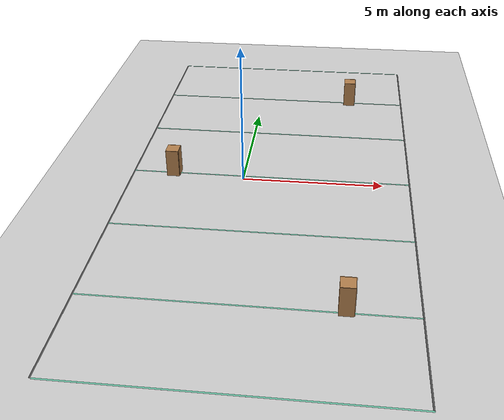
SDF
<sdf version="1.7">
 <world name="default">
  <model name="ground_plane">
   <static>1</static>
   <link name="link">
    <collision name="collision">
     <geometry><plane><normal>0 0 1</normal><size>100 100</size></plane></geometry>
     <surface>
      <contact><collide_bitmask>65535</collide_bitmask></contact>
      <friction><ode><mu>100</mu><mu2>50</mu2></ode></friction>
     </surface>
    </collision>
    <visual name="visual">
     <cast_shadows>0</cast_shadows>
     <geometry><plane><normal>0 0 1</normal><size>100 100</size></plane></geometry>
     <material>
      <script><uri>file://media/materials/scripts/gazebo.material</uri><name>Gazebo/Grey</name></script>
     </material>
    </visual>
   </link>
  </model>
  <gravity>0 0 -9.8</gravity>
  <magnetic_field>6e-06 2.3e-05 -4.2e-05</magnetic_field>
  <atmosphere type="adiabatic"/>
  <physics type="ode">
   <max_step_size>0.001</max_step_size>
   <real_time_factor>1</real_time_factor>
   <real_time_update_rate>1000</real_time_update_rate>
  </physics>
  <scene><ambient>0.4 0.4 0.4 1</ambient><background>0.7 0.7 0.7 1</background><shadows>1</shadows></scene>
  <spherical_coordinates>
   <surface_model>EARTH_WGS84</surface_model>
   <latitude_deg>0</latitude_deg>
   <longitude_deg>0</longitude_deg>
   <elevation>0</elevation>
   <heading_deg>0</heading_deg>
  </spherical_coordinates>
  <model name="cabinet">
   <static>1</static>
   <link name="cabinet_bottom_plate">
    <inertial>
     <pose>0 0 -1 0 -0 0</pose>
     <inertia><ixx>2.05</ixx><ixy>0</ixy><ixz>0</ixz><iyy>2.05</iyy><iyz>0</iyz><izz>2.05</izz></inertia>
     <mass>25</mass>
    </inertial>
    <collision name="cabinet_bottom_plate_geom">
     <pose>0 0 0.01 0 -0 0</pose>
     <geometry><box><size>0.45 0.45 0.02</size></box></geometry>
    </collision>
    <visual name="cabinet_bottom_plate_geom_visual">
     <pose>0 0 0.01 0 -0 0</pose>
     <geometry><box><size>0.45 0.45 0.02</size></box></geometry>
     <material>
      <script><uri>file://media/materials/scripts/gazebo.material</uri><name>Gazebo/Wood</name></script>
     </material>
    </visual>
    <collision name="cabinet_bottom_plate_geom_cabinet_back_plate">
     <pose>0.235 0 0.51 0 -0 0</pose>
     <geometry><box><size>0.02 0.45 1.02</size></box></geometry>
    </collision>
    <visual name="cabinet_bottom_plate_geom_cabinet_back_plate_visual">
     <pose>0.235 0 0.51 0 -0 0</pose>
     <geometry><box><size>0.02 0.45 1.02</size></box></geometry>
     <material>
      <script><uri>file://media/materials/scripts/gazebo.material</uri><name>Gazebo/Wood</name></script>
     </material>
    </visual>
    <collision name="cabinet_bottom_plate_geom_cabinet_left_plate">
     <pose>0 0.235 0.51 0 -0 0</pose>
     <geometry><box><size>0.45 0.02 1.02</size></box></geometry>
    </collision>
    <visual name="cabinet_bottom_plate_geom_cabinet_left_plate_visual">
     <pose>0 0.235 0.51 0 -0 0</pose>
     <geometry><box><size>0.45 0.02 1.02</size></box></geometry>
     <material>
      <script><uri>file://media/materials/scripts/gazebo.material</uri><name>Gazebo/Wood</name></script>
     </material>
    </visual>
    <collision name="cabinet_bottom_plate_geom_cabinet_middle_plate">
     <pose>0 0 0.51 0 -0 0</pose>
     <geometry><box><size>0.45 0.45 0.02</size></box></geometry>
    </collision>
    <visual name="cabinet_bottom_plate_geom_cabinet_middle_plate_visual">
     <pose>0 0 0.51 0 -0 0</pose>
     <geometry><box><size>0.45 0.45 0.02</size></box></geometry>
     <material>
      <script><uri>file://media/materials/scripts/gazebo.material</uri><name>Gazebo/Wood</name></script>
     </material>
    </visual>
    <collision name="cabinet_bottom_plate_geom_cabinet_right_plate">
     <pose>0 -0.235 0.51 0 -0 0</pose>
     <geometry><box><size>0.45 0.02 1.02</size></box></geometry>
    </collision>
    <visual name="cabinet_bottom_plate_geom_cabinet_right_plate_visual">
     <pose>0 -0.235 0.51 0 -0 0</pose>
     <geometry><box><size>0.45 0.02 1.02</size></box></geometry>
     <material>
      <script><uri>file://media/materials/scripts/gazebo.material</uri><name>Gazebo/Wood</name></script>
     </material>
    </visual>
    <collision name="cabinet_bottom_plate_geom_cabinet_top_plate">
     <pose>0 0 1.01 0 -0 0</pose>
     <geometry><box><size>0.45 0.45 0.02</size></box></geometry>
    </collision>
    <visual name="cabinet_bottom_plate_geom_cabinet_top_plate_visual">
     <pose>0 0 1.01 0 -0 0</pose>
     <geometry><box><size>0.45 0.45 0.02</size></box></geometry>
     <material>
      <script><uri>file://media/materials/scripts/gazebo.material</uri><name>Gazebo/Wood</name></script>
     </material>
    </visual>
   </link>
   <pose>3.71429 6.71559 0 0 -0 0</pose>
  </model>
  <model name="cabinet_clone">
   <static>1</static>
   <link name="cabinet_bottom_plate">
    <inertial>
     <pose>0 0 -1 0 -0 0</pose>
     <inertia><ixx>2.05</ixx><ixy>0</ixy><ixz>0</ixz><iyy>2.05</iyy><iyz>0</iyz><izz>2.05</izz></inertia>
     <mass>25</mass>
    </inertial>
    <collision name="cabinet_bottom_plate_geom">
     <pose>0 0 0.01 0 -0 0</pose>
     <geometry><box><size>0.45 0.45 0.02</size></box></geometry>
    </collision>
    <visual name="cabinet_bottom_plate_geom_visual">
     <pose>0 0 0.01 0 -0 0</pose>
     <geometry><box><size>0.45 0.45 0.02</size></box></geometry>
     <material>
      <script><uri>file://media/materials/scripts/gazebo.material</uri><name>Gazebo/Wood</name></script>
     </material>
    </visual>
    <collision name="cabinet_bottom_plate_geom_cabinet_back_plate">
     <pose>0.235 0 0.51 0 -0 0</pose>
     <geometry><box><size>0.02 0.45 1.02</size></box></geometry>
    </collision>
    <visual name="cabinet_bottom_plate_geom_cabinet_back_plate_visual">
     <pose>0.235 0 0.51 0 -0 0</pose>
     <geometry><box><size>0.02 0.45 1.02</size></box></geometry>
     <material>
      <script><uri>file://media/materials/scripts/gazebo.material</uri><name>Gazebo/Wood</name></script>
     </material>
    </visual>
    <collision name="cabinet_bottom_plate_geom_cabinet_left_plate">
     <pose>0 0.235 0.51 0 -0 0</pose>
     <geometry><box><size>0.45 0.02 1.02</size></box></geometry>
    </collision>
    <visual name="cabinet_bottom_plate_geom_cabinet_left_plate_visual">
     <pose>0 0.235 0.51 0 -0 0</pose>
     <geometry><box><size>0.45 0.02 1.02</size></box></geometry>
     <material>
      <script><uri>file://media/materials/scripts/gazebo.material</uri><name>Gazebo/Wood</name></script>
     </material>
    </visual>
    <collision name="cabinet_bottom_plate_geom_cabinet_middle_plate">
     <pose>0 0 0.51 0 -0 0</pose>
     <geometry><box><size>0.45 0.45 0.02</size></box></geometry>
    </collision>
    <visual name="cabinet_bottom_plate_geom_cabinet_middle_plate_visual">
     <pose>0 0 0.51 0 -0 0</pose>
     <geometry><box><size>0.45 0.45 0.02</size></box></geometry>
     <material>
      <script><uri>file://media/materials/scripts/gazebo.material</uri><name>Gazebo/Wood</name></script>
     </material>
    </visual>
    <collision name="cabinet_bottom_plate_geom_cabinet_right_plate">
     <pose>0 -0.235 0.51 0 -0 0</pose>
     <geometry><box><size>0.45 0.02 1.02</size></box></geometry>
    </collision>
    <visual name="cabinet_bottom_plate_geom_cabinet_right_plate_visual">
     <pose>0 -0.235 0.51 0 -0 0</pose>
     <geometry><box><size>0.45 0.02 1.02</size></box></geometry>
     <material>
      <script><uri>file://media/materials/scripts/gazebo.material</uri><name>Gazebo/Wood</name></script>
     </material>
    </visual>
    <collision name="cabinet_bottom_plate_geom_cabinet_top_plate">
     <pose>0 0 1.01 0 -0 0</pose>
     <geometry><box><size>0.45 0.45 0.02</size></box></geometry>
    </collision>
    <visual name="cabinet_bottom_plate_geom_cabinet_top_plate_visual">
     <pose>0 0 1.01 0 -0 0</pose>
     <geometry><box><size>0.45 0.45 0.02</size></box></geometry>
     <material>
      <script><uri>file://media/materials/scripts/gazebo.material</uri><name>Gazebo/Wood</name></script>
     </material>
    </visual>
   </link>
   <pose>-2.56995 0.176892 0 0 -0 0</pose>
  </model>
  <model name="cabinet_clone_0">
   <static>1</static>
   <link name="cabinet_bottom_plate">
    <inertial>
     <pose>0 0 -1 0 -0 0</pose>
     <inertia><ixx>2.05</ixx><ixy>0</ixy><ixz>0</ixz><iyy>2.05</iyy><iyz>0</iyz><izz>2.05</izz></inertia>
     <mass>25</mass>
    </inertial>
    <collision name="cabinet_bottom_plate_geom">
     <pose>0 0 0.01 0 -0 0</pose>
     <geometry><box><size>0.45 0.45 0.02</size></box></geometry>
    </collision>
    <visual name="cabinet_bottom_plate_geom_visual">
     <pose>0 0 0.01 0 -0 0</pose>
     <geometry><box><size>0.45 0.45 0.02</size></box></geometry>
     <material>
      <script><uri>file://media/materials/scripts/gazebo.material</uri><name>Gazebo/Wood</name></script>
     </material>
    </visual>
    <collision name="cabinet_bottom_plate_geom_cabinet_back_plate">
     <pose>0.235 0 0.51 0 -0 0</pose>
     <geometry><box><size>0.02 0.45 1.02</size></box></geometry>
    </collision>
    <visual name="cabinet_bottom_plate_geom_cabinet_back_plate_visual">
     <pose>0.235 0 0.51 0 -0 0</pose>
     <geometry><box><size>0.02 0.45 1.02</size></box></geometry>
     <material>
      <script><uri>file://media/materials/scripts/gazebo.material</uri><name>Gazebo/Wood</name></script>
     </material>
    </visual>
    <collision name="cabinet_bottom_plate_geom_cabinet_left_plate">
     <pose>0 0.235 0.51 0 -0 0</pose>
     <geometry><box><size>0.45 0.02 1.02</size></box></geometry>
    </collision>
    <visual name="cabinet_bottom_plate_geom_cabinet_left_plate_visual">
     <pose>0 0.235 0.51 0 -0 0</pose>
     <geometry><box><size>0.45 0.02 1.02</size></box></geometry>
     <material>
      <script><uri>file://media/materials/scripts/gazebo.material</uri><name>Gazebo/Wood</name></script>
     </material>
    </visual>
    <collision name="cabinet_bottom_plate_geom_cabinet_middle_plate">
     <pose>0 0 0.51 0 -0 0</pose>
     <geometry><box><size>0.45 0.45 0.02</size></box></geometry>
    </collision>
    <visual name="cabinet_bottom_plate_geom_cabinet_middle_plate_visual">
     <pose>0 0 0.51 0 -0 0</pose>
     <geometry><box><size>0.45 0.45 0.02</size></box></geometry>
     <material>
      <script><uri>file://media/materials/scripts/gazebo.material</uri><name>Gazebo/Wood</name></script>
     </material>
    </visual>
    <collision name="cabinet_bottom_plate_geom_cabinet_right_plate">
     <pose>0 -0.235 0.51 0 -0 0</pose>
     <geometry><box><size>0.45 0.02 1.02</size></box></geometry>
    </collision>
    <visual name="cabinet_bottom_plate_geom_cabinet_right_plate_visual">
     <pose>0 -0.235 0.51 0 -0 0</pose>
     <geometry><box><size>0.45 0.02 1.02</size></box></geometry>
     <material>
      <script><uri>file://media/materials/scripts/gazebo.material</uri><name>Gazebo/Wood</name></script>
     </material>
    </visual>
    <collision name="cabinet_bottom_plate_geom_cabinet_top_plate">
     <pose>0 0 1.01 0 -0 0</pose>
     <geometry><box><size>0.45 0.45 0.02</size></box></geometry>
    </collision>
    <visual name="cabinet_bottom_plate_geom_cabinet_top_plate_visual">
     <pose>0 0 1.01 0 -0 0</pose>
     <geometry><box><size>0.45 0.45 0.02</size></box></geometry>
     <material>
      <script><uri>file://media/materials/scripts/gazebo.material</uri><name>Gazebo/Wood</name></script>
     </material>
    </visual>
   </link>
   <pose>3.81461 -6.67108 0 0 -0 0</pose>
  </model>
  <light name="sun" type="directional">
   <pose>-0.955999 -0.078041 10 0 -0 0</pose>
   <diffuse>0.8 0.8 0.8 1</diffuse>
   <specular>0.2 0.2 0.2 1</specular>
   <attenuation>
    <range>1000</range>
    <constant>0.9</constant>
    <linear>0.01</linear>
    <quadratic>0.001</quadratic>
   </attenuation>
   <direction>-0.5 0.1 -0.9</direction>
   <spot><inner_angle>0</inner_angle><outer_angle>0</outer_angle><falloff>0</falloff></spot>
  </light>
  <model name="line_1">
   <pose>1.12399 6.71527 0 0 -0 0</pose>
   <link name="Wall_0">
    <collision name="Wall_0_Collision">
     <geometry><box><size>10 0.05 5e-05</size></box></geometry>
     <pose>0 0 0.0025 0 -0 0</pose>
    </collision>
    <visual name="Wall_0_Visual">
     <pose>0 0 0.0025 0 -0 0</pose>
     <geometry><box><size>10 0.05 5e-05</size></box></geometry>
     <material>
      <script><uri>file://media/materials/scripts/gazebo.material</uri><name>Gazebo/Grey</name></script>
      <ambient>0.435294 0.796078 0.67451 1</ambient>
     </material>
     <meta><layer>0</layer></meta>
    </visual>
    <pose>-0.194987 -0 0 0 -0 3.14159</pose>
   </link>
   <static>1</static>
  </model>
  <model name="line_1_clone">
   <pose>1.14261 10.0348 0 0 -0 0</pose>
   <link name="Wall_0">
    <collision name="Wall_0_Collision">
     <geometry><box><size>10 0.05 5e-05</size></box></geometry>
     <pose>0 0 0.0025 0 -0 0</pose>
    </collision>
    <visual name="Wall_0_Visual">
     <pose>0 0 0.0025 0 -0 0</pose>
     <geometry><box><size>10 0.05 5e-05</size></box></geometry>
     <material>
      <script><uri>file://media/materials/scripts/gazebo.material</uri><name>Gazebo/Grey</name></script>
      <ambient>0.435294 0.796078 0.67451 1</ambient>
     </material>
     <meta><layer>0</layer></meta>
    </visual>
    <pose>-0.194987 -0 0 0 -0 3.14159</pose>
   </link>
   <static>1</static>
  </model>
  <model name="line_1_clone_0">
   <pose>1.17821 -10.0066 0 0 -0 0</pose>
   <link name="Wall_0">
    <collision name="Wall_0_Collision">
     <geometry><box><size>10 0.05 5e-05</size></box></geometry>
     <pose>0 0 0.0025 0 -0 0</pose>
    </collision>
    <visual name="Wall_0_Visual">
     <pose>0 0 0.0025 0 -0 0</pose>
     <geometry><box><size>10 0.05 5e-05</size></box></geometry>
     <material>
      <script><uri>file://media/materials/scripts/gazebo.material</uri><name>Gazebo/Grey</name></script>
      <ambient>0.435294 0.796078 0.67451 1</ambient>
     </material>
     <meta><layer>0</layer></meta>
    </visual>
    <pose>-0.194987 -0 0 0 -0 3.14159</pose>
   </link>
   <static>1</static>
  </model>
  <model name="line_1_clone_1">
   <pose>1.13579 3.53561 0 0 -0 0</pose>
   <link name="Wall_0">
    <collision name="Wall_0_Collision">
     <geometry><box><size>10 0.05 5e-05</size></box></geometry>
     <pose>0 0 0.0025 0 -0 0</pose>
    </collision>
    <visual name="Wall_0_Visual">
     <pose>0 0 0.0025 0 -0 0</pose>
     <geometry><box><size>10 0.05 5e-05</size></box></geometry>
     <material>
      <script><uri>file://media/materials/scripts/gazebo.material</uri><name>Gazebo/Grey</name></script>
      <ambient>0.435294 0.796078 0.67451 1</ambient>
     </material>
     <meta><layer>0</layer></meta>
    </visual>
    <pose>-0.194987 -0 0 0 -0 3.14159</pose>
   </link>
   <static>1</static>
  </model>
  <model name="line_1_clone_2">
   <pose>1.13711 0.172698 0 0 -0 0</pose>
   <link name="Wall_0">
    <collision name="Wall_0_Collision">
     <geometry><box><size>10 0.05 5e-05</size></box></geometry>
     <pose>0 0 0.0025 0 -0 0</pose>
    </collision>
    <visual name="Wall_0_Visual">
     <pose>0 0 0.0025 0 -0 0</pose>
     <geometry><box><size>10 0.05 5e-05</size></box></geometry>
     <material>
      <script><uri>file://media/materials/scripts/gazebo.material</uri><name>Gazebo/Grey</name></script>
      <ambient>0.435294 0.796078 0.67451 1</ambient>
     </material>
     <meta><layer>0</layer></meta>
    </visual>
    <pose>-0.194987 -0 0 0 -0 3.14159</pose>
   </link>
   <static>1</static>
  </model>
  <model name="line_1_clone_3">
   <pose>1.15461 -3.23711 0 0 -0 0</pose>
   <link name="Wall_0">
    <collision name="Wall_0_Collision">
     <geometry><box><size>10 0.05 5e-05</size></box></geometry>
     <pose>0 0 0.0025 0 -0 0</pose>
    </collision>
    <visual name="Wall_0_Visual">
     <pose>0 0 0.0025 0 -0 0</pose>
     <geometry><box><size>10 0.05 5e-05</size></box></geometry>
     <material>
      <script><uri>file://media/materials/scripts/gazebo.material</uri><name>Gazebo/Grey</name></script>
      <ambient>0.435294 0.796078 0.67451 1</ambient>
     </material>
     <meta><layer>0</layer></meta>
    </visual>
    <pose>-0.194987 -0 0 0 -0 3.14159</pose>
   </link>
   <static>1</static>
  </model>
  <model name="line_1_clone_4">
   <pose>1.15033 -6.77993 0 0 -0 0</pose>
   <link name="Wall_0">
    <collision name="Wall_0_Collision">
     <geometry><box><size>10 0.05 5e-05</size></box></geometry>
     <pose>0 0 0.0025 0 -0 0</pose>
    </collision>
    <visual name="Wall_0_Visual">
     <pose>0 0 0.0025 0 -0 0</pose>
     <geometry><box><size>10 0.05 5e-05</size></box></geometry>
     <material>
      <script><uri>file://media/materials/scripts/gazebo.material</uri><name>Gazebo/Grey</name></script>
      <ambient>0.435294 0.796078 0.67451 1</ambient>
     </material>
     <meta><layer>0</layer></meta>
    </visual>
    <pose>-0.194987 -0 0 0 -0 3.14159</pose>
   </link>
   <static>1</static>
  </model>
  <model name="line_track">
   <pose>-0.695577 0.229379 0 0 -0 0</pose>
   <link name="Wall_14">
    <collision name="Wall_14_Collision">
     <geometry><box><size>20 0.05 5e-05</size></box></geometry>
     <pose>0 0 0.0025 0 -0 0</pose>
    </collision>
    <visual name="Wall_14_Visual">
     <pose>0 0 0.0025 0 -0 0</pose>
     <geometry><box><size>20 0.05 5e-05</size></box></geometry>
     <material>
      <script><uri>file://media/materials/scripts/gazebo.material</uri><name>Gazebo/DarkGrey</name></script>
      <ambient>0.996078 0.47451 0.0196078 1</ambient>
     </material>
     <meta><layer>0</layer></meta>
    </visual>
    <pose>-3.36432 -0.227192 0 0 -0 -1.5708</pose>
   </link>
   <static>1</static>
  </model>
  <model name="line_track_clone">
   <pose>9.3227 0.231298 0 0 -0 0</pose>
   <link name="Wall_14">
    <collision name="Wall_14_Collision">
     <geometry><box><size>20 0.05 5e-05</size></box></geometry>
     <pose>0 0 0.0025 0 -0 0</pose>
    </collision>
    <visual name="Wall_14_Visual">
     <pose>0 0 0.0025 0 -0 0</pose>
     <geometry><box><size>20 0.05 5e-05</size></box></geometry>
     <material>
      <script><uri>file://media/materials/scripts/gazebo.material</uri><name>Gazebo/DarkGrey</name></script>
      <ambient>0.996078 0.47451 0.0196078 1</ambient>
     </material>
     <meta><layer>0</layer></meta>
    </visual>
    <pose>-3.36432 -0.227192 0 0 -0 -1.5708</pose>
   </link>
   <static>1</static>
  </model>
 </world>
</sdf>
